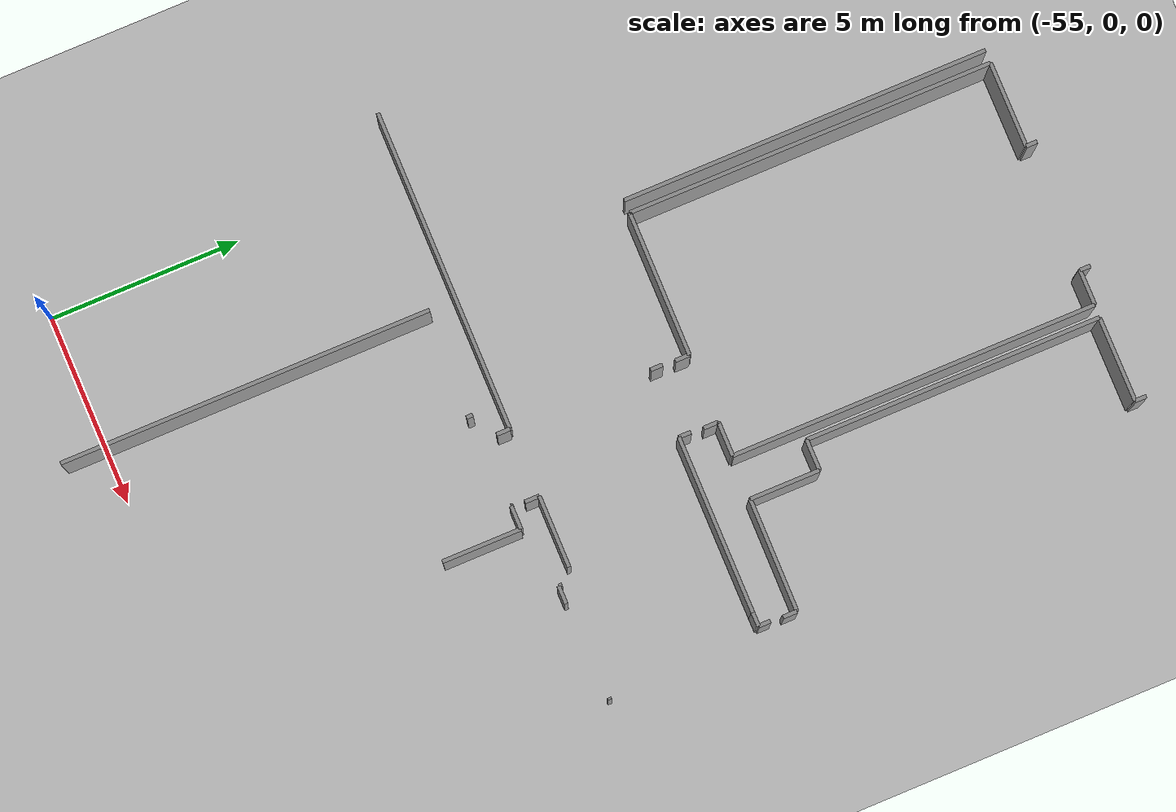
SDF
<sdf version="1.6">
 <world name="default">
  <model name="ground_plane">
   <static>1</static>
   <link name="link">
    <collision name="collision">
     <geometry><plane><normal>0 0 1</normal><size>100 100</size></plane></geometry>
     <surface><friction><ode><mu>100</mu><mu2>50</mu2></ode></friction></surface>
    </collision>
    <visual name="visual">
     <cast_shadows>0</cast_shadows>
     <geometry><plane><normal>0 0 1</normal><size>100 100</size></plane></geometry>
     <material>
      <script><uri>file://media/materials/scripts/gazebo.material</uri><name>Gazebo/Grey</name></script>
     </material>
    </visual>
   </link>
  </model>
  <model name="0510032197_A_40_1_105">
   <static>1</static>
   <link name="Wall_17">
    <collision name="Wall_17_Collision">
     <geometry><box><size>9.66255290484 0.1 2.5</size></box></geometry>
     <pose>4.83127645242 0 1.25 0 0 0</pose>
    </collision>
    <visual name="Wall_17_Visual">
     <pose>4.83127645242 0 1.25 0 0 0</pose>
     <geometry><box><size>9.66255290484 0.1 2.5</size></box></geometry>
     <material>
      <script><uri>file://media/materials/scripts/gazebo.material</uri><name>Gazebo/Grey</name></script>
      <ambient>1 1 1 1</ambient>
     </material>
    </visual>
    <pose>13.5438935421 -0.307705995247 0 0 0 -1.57079632679</pose>
   </link>
   <link name="Wall_22">
    <collision name="Wall_22_Collision">
     <geometry><box><size>9.64958883565 0.1 2.5</size></box></geometry>
     <pose>4.82479441782 0 1.25 0 0 0</pose>
    </collision>
    <visual name="Wall_22_Visual">
     <pose>4.82479441782 0 1.25 0 0 0</pose>
     <geometry><box><size>9.64958883565 0.1 2.5</size></box></geometry>
     <material>
      <script><uri>file://media/materials/scripts/gazebo.material</uri><name>Gazebo/Grey</name></script>
      <ambient>1 1 1 1</ambient>
     </material>
    </visual>
    <pose>13.8809593411 -9.96301427319 0 0 0 1.57079632679</pose>
   </link>
   <link name="Wall_23">
    <collision name="Wall_23_Collision">
     <geometry><box><size>2.2441820562 0.1 2.5</size></box></geometry>
     <pose>1.1220910281 0 1.25 0 0 0</pose>
    </collision>
    <visual name="Wall_23_Visual">
     <pose>1.1220910281 0 1.25 0 0 0</pose>
     <geometry><box><size>2.2441820562 0.1 2.5</size></box></geometry>
     <material>
      <script><uri>file://media/materials/scripts/gazebo.material</uri><name>Gazebo/Grey</name></script>
      <ambient>1 1 1 1</ambient>
     </material>
    </visual>
    <pose>13.8809593411 -0.313425437537 0 0 0 0.0</pose>
   </link>
   <link name="Wall_24">
    <collision name="Wall_24_Collision">
     <geometry><box><size>0.290674767092 0.1 2.5</size></box></geometry>
     <pose>0.145337383546 0 1.25 0 0 0</pose>
    </collision>
    <visual name="Wall_24_Visual">
     <pose>0.145337383546 0 1.25 0 0 0</pose>
     <geometry><box><size>0.290674767092 0.1 2.5</size></box></geometry>
     <material>
      <script><uri>file://media/materials/scripts/gazebo.material</uri><name>Gazebo/Grey</name></script>
      <ambient>1 1 1 1</ambient>
     </material>
    </visual>
    <pose>16.1251413973 -0.313425437537 0 0 0 1.57079632679</pose>
   </link>
   <link name="Wall_25">
    <collision name="Wall_25_Collision">
     <geometry><box><size>0.273262242784 0.1 2.5</size></box></geometry>
     <pose>0.136631121392 0 1.25 0 0 0</pose>
    </collision>
    <visual name="Wall_25_Visual">
     <pose>0.136631121392 0 1.25 0 0 0</pose>
     <geometry><box><size>0.273262242784 0.1 2.5</size></box></geometry>
     <material>
      <script><uri>file://media/materials/scripts/gazebo.material</uri><name>Gazebo/Grey</name></script>
      <ambient>1 1 1 1</ambient>
     </material>
    </visual>
    <pose>19.4655498926 -0.0227506704457 0 0 0 -1.57079632679</pose>
   </link>
   <link name="Wall_26">
    <collision name="Wall_26_Collision">
     <geometry><box><size>0.926549651114 0.1 2.5</size></box></geometry>
     <pose>0.463274825557 0 1.25 0 0 0</pose>
    </collision>
    <visual name="Wall_26_Visual">
     <pose>0.463274825557 0 1.25 0 0 0</pose>
     <geometry><box><size>0.926549651114 0.1 2.5</size></box></geometry>
     <material>
      <script><uri>file://media/materials/scripts/gazebo.material</uri><name>Gazebo/Grey</name></script>
      <ambient>1 1 1 1</ambient>
     </material>
    </visual>
    <pose>19.4655498926 -0.29601291323 0 0 0 0.0</pose>
   </link>
   <link name="Wall_27">
    <collision name="Wall_27_Collision">
     <geometry><box><size>9.65518117922 0.1 2.5</size></box></geometry>
     <pose>4.82759058961 0 1.25 0 0 0</pose>
    </collision>
    <visual name="Wall_27_Visual">
     <pose>4.82759058961 0 1.25 0 0 0</pose>
     <geometry><box><size>9.65518117922 0.1 2.5</size></box></geometry>
     <material>
      <script><uri>file://media/materials/scripts/gazebo.material</uri><name>Gazebo/Grey</name></script>
      <ambient>1 1 1 1</ambient>
     </material>
    </visual>
    <pose>20.3920995437 -0.29601291323 0 0 0 -1.57079632679</pose>
   </link>
   <link name="Wall_28">
    <collision name="Wall_28_Collision">
     <geometry><box><size>0.901892499905 0.1 2.5</size></box></geometry>
     <pose>0.450946249952 0 1.25 0 0 0</pose>
    </collision>
    <visual name="Wall_28_Visual">
     <pose>0.450946249952 0 1.25 0 0 0</pose>
     <geometry><box><size>0.901892499905 0.1 2.5</size></box></geometry>
     <material>
      <script><uri>file://media/materials/scripts/gazebo.material</uri><name>Gazebo/Grey</name></script>
      <ambient>1 1 1 1</ambient>
     </material>
    </visual>
    <pose>20.3920995437 -9.95119409245 0 0 0 3.14159265359</pose>
   </link>
   <link name="Wall_29">
    <collision name="Wall_29_Collision">
     <geometry><box><size>0.394768616785 0.1 2.5</size></box></geometry>
     <pose>0.197384308392 0 1.25 0 0 0</pose>
    </collision>
    <visual name="Wall_29_Visual">
     <pose>0.197384308392 0 1.25 0 0 0</pose>
     <geometry><box><size>0.394768616785 0.1 2.5</size></box></geometry>
     <material>
      <script><uri>file://media/materials/scripts/gazebo.material</uri><name>Gazebo/Grey</name></script>
      <ambient>1 1 1 1</ambient>
     </material>
    </visual>
    <pose>19.4902070438 -9.95119409245 0 0 0 -1.57079632679</pose>
   </link>
   <link name="Wall_30">
    <collision name="Wall_30_Collision">
     <geometry><box><size>0.377610289912 0.1 2.5</size></box></geometry>
     <pose>0.188805144956 0 1.25 0 0 0</pose>
    </collision>
    <visual name="Wall_30_Visual">
     <pose>0.188805144956 0 1.25 0 0 0</pose>
     <geometry><box><size>0.377610289912 0.1 2.5</size></box></geometry>
     <material>
      <script><uri>file://media/materials/scripts/gazebo.material</uri><name>Gazebo/Grey</name></script>
      <ambient>1 1 1 1</ambient>
     </material>
    </visual>
    <pose>17.6887098209 -10.3459627092 0 0 0 1.57079632679</pose>
   </link>
   <link name="Wall_31">
    <collision name="Wall_31_Collision">
     <geometry><box><size>3.80775422161 0.1 2.5</size></box></geometry>
     <pose>1.90387711081 0 1.25 0 0 0</pose>
    </collision>
    <visual name="Wall_31_Visual">
     <pose>1.90387711081 0 1.25 0 0 0</pose>
     <geometry><box><size>3.80775422161 0.1 2.5</size></box></geometry>
     <material>
      <script><uri>file://media/materials/scripts/gazebo.material</uri><name>Gazebo/Grey</name></script>
      <ambient>1 1 1 1</ambient>
     </material>
    </visual>
    <pose>17.6887098209 -9.96835241932 0 0 0 3.14019073856</pose>
   </link>
   <link name="Wall_32">
    <collision name="Wall_32_Collision">
     <geometry><box><size>1.84178751636 0.1 2.5</size></box></geometry>
     <pose>0.920893758182 0 1.25 0 0 0</pose>
    </collision>
    <visual name="Wall_32_Visual">
     <pose>0.920893758182 0 1.25 0 0 0</pose>
     <geometry><box><size>1.84178751636 0.1 2.5</size></box></geometry>
     <material>
      <script><uri>file://media/materials/scripts/gazebo.material</uri><name>Gazebo/Grey</name></script>
      <ambient>1 1 1 1</ambient>
     </material>
    </visual>
    <pose>21.5399280621 -9.96619174113 0 0 0 1.57079632679</pose>
   </link>
   <link name="Wall_33">
    <collision name="Wall_33_Collision">
     <geometry><box><size>0.813558891191 0.1 2.5</size></box></geometry>
     <pose>0.406779445595 0 1.25 0 0 0</pose>
    </collision>
    <visual name="Wall_33_Visual">
     <pose>0.406779445595 0 1.25 0 0 0</pose>
     <geometry><box><size>0.813558891191 0.1 2.5</size></box></geometry>
     <material>
      <script><uri>file://media/materials/scripts/gazebo.material</uri><name>Gazebo/Grey</name></script>
      <ambient>1 1 1 1</ambient>
     </material>
    </visual>
    <pose>21.5399280621 -8.12440422476 0 0 0 3.14159265359</pose>
   </link>
   <link name="Wall_34">
    <collision name="Wall_34_Collision">
     <geometry><box><size>7.81123298466 0.1 2.5</size></box></geometry>
     <pose>3.90561649233 0 1.25 0 0 0</pose>
    </collision>
    <visual name="Wall_34_Visual">
     <pose>3.90561649233 0 1.25 0 0 0</pose>
     <geometry><box><size>7.81123298466 0.1 2.5</size></box></geometry>
     <material>
      <script><uri>file://media/materials/scripts/gazebo.material</uri><name>Gazebo/Grey</name></script>
      <ambient>1 1 1 1</ambient>
     </material>
    </visual>
    <pose>20.7263691709 -8.12440422476 0 0 0 1.57079632679</pose>
   </link>
   <link name="Wall_35">
    <collision name="Wall_35_Collision">
     <geometry><box><size>2.23020119727 0.1 2.5</size></box></geometry>
     <pose>1.11510059863 0 1.25 0 0 0</pose>
    </collision>
    <visual name="Wall_35_Visual">
     <pose>1.11510059863 0 1.25 0 0 0</pose>
     <geometry><box><size>2.23020119727 0.1 2.5</size></box></geometry>
     <material>
      <script><uri>file://media/materials/scripts/gazebo.material</uri><name>Gazebo/Grey</name></script>
      <ambient>1 1 1 1</ambient>
     </material>
    </visual>
    <pose>20.7263691709 -0.313171240102 0 0 0 0.0</pose>
   </link>
   <link name="Wall_36">
    <collision name="Wall_36_Collision">
     <geometry><box><size>0.296648406818 0.1 2.5</size></box></geometry>
     <pose>0.148324203409 0 1.25 0 0 0</pose>
    </collision>
    <visual name="Wall_36_Visual">
     <pose>0.148324203409 0 1.25 0 0 0</pose>
     <geometry><box><size>0.296648406818 0.1 2.5</size></box></geometry>
     <material>
      <script><uri>file://media/materials/scripts/gazebo.material</uri><name>Gazebo/Grey</name></script>
      <ambient>1 1 1 1</ambient>
     </material>
    </visual>
    <pose>22.9565703682 -0.313171240102 0 0 0 1.57079632679</pose>
   </link>
   <link name="Wall_45">
    <collision name="Wall_45_Collision">
     <geometry><box><size>0.371890847621 0.1 2.5</size></box></geometry>
     <pose>0.185945423811 0 1.25 0 0 0</pose>
    </collision>
    <visual name="Wall_45_Visual">
     <pose>0.185945423811 0 1.25 0 0 0</pose>
     <geometry><box><size>0.371890847621 0.1 2.5</size></box></geometry>
     <material>
      <script><uri>file://media/materials/scripts/gazebo.material</uri><name>Gazebo/Grey</name></script>
      <ambient>1 1 1 1</ambient>
     </material>
    </visual>
    <pose>24.5177239162 -10.3521905464 0 0 0 1.57079632679</pose>
   </link>
   <link name="Wall_46">
    <collision name="Wall_46_Collision">
     <geometry><box><size>2.97782927362 0.1 2.5</size></box></geometry>
     <pose>1.48891463681 0 1.25 0 0 0</pose>
    </collision>
    <visual name="Wall_46_Visual">
     <pose>1.48891463681 0 1.25 0 0 0</pose>
     <geometry><box><size>2.97782927362 0.1 2.5</size></box></geometry>
     <material>
      <script><uri>file://media/materials/scripts/gazebo.material</uri><name>Gazebo/Grey</name></script>
      <ambient>1 1 1 1</ambient>
     </material>
    </visual>
    <pose>24.5177239162 -9.98029969878 0 0 0 3.13685497082</pose>
   </link>
   <link name="Wall_419">
    <collision name="Wall_419_Collision">
     <geometry><box><size>9.79829433521 0.1 2.5</size></box></geometry>
     <pose>4.89914716761 0 1.25 0 0 0</pose>
    </collision>
    <visual name="Wall_419_Visual">
     <pose>4.89914716761 0 1.25 0 0 0</pose>
     <geometry><box><size>9.79829433521 0.1 2.5</size></box></geometry>
     <material>
      <script><uri>file://media/materials/scripts/gazebo.material</uri><name>Gazebo/Grey</name></script>
      <ambient>1 1 1 1</ambient>
     </material>
    </visual>
    <pose>14.2058236632 -15.4332159789 0 0 0 -1.57079632679</pose>
   </link>
   <link name="Wall_423">
    <collision name="Wall_423_Collision">
     <geometry><box><size>0.167261912327 0.1 2.5</size></box></geometry>
     <pose>0.0836309561637 0 1.25 0 0 0</pose>
    </collision>
    <visual name="Wall_423_Visual">
     <pose>0.0836309561637 0 1.25 0 0 0</pose>
     <geometry><box><size>0.167261912327 0.1 2.5</size></box></geometry>
     <material>
      <script><uri>file://media/materials/scripts/gazebo.material</uri><name>Gazebo/Grey</name></script>
      <ambient>1 1 1 1</ambient>
     </material>
    </visual>
    <pose>17.0054271152 -15.4466884429 0 0 0 -1.57079632679</pose>
   </link>
   <link name="Wall_437">
    <collision name="Wall_437_Collision">
     <geometry><box><size>0.0550337447095 0.1 2.5</size></box></geometry>
     <pose>0.0275168723548 0 1.25 0 0 0</pose>
    </collision>
    <visual name="Wall_437_Visual">
     <pose>0.0275168723548 0 1.25 0 0 0</pose>
     <geometry><box><size>0.0550337447095 0.1 2.5</size></box></geometry>
     <material>
      <script><uri>file://media/materials/scripts/gazebo.material</uri><name>Gazebo/Grey</name></script>
      <ambient>1 1 1 1</ambient>
     </material>
    </visual>
    <pose>19.4344107068 -15.3799616162 0 0 0 -1.57079632679</pose>
   </link>
   <link name="Wall_438">
    <collision name="Wall_438_Collision">
     <geometry><box><size>0.615411990493 0.1 2.5</size></box></geometry>
     <pose>0.307705995247 0 1.25 0 0 0</pose>
    </collision>
    <visual name="Wall_438_Visual">
     <pose>0.307705995247 0 1.25 0 0 0</pose>
     <geometry><box><size>0.615411990493 0.1 2.5</size></box></geometry>
     <material>
      <script><uri>file://media/materials/scripts/gazebo.material</uri><name>Gazebo/Grey</name></script>
      <ambient>1 1 1 1</ambient>
     </material>
    </visual>
    <pose>19.4344107068 -15.4349953609 0 0 0 0.0</pose>
   </link>
   <link name="Wall_439">
    <collision name="Wall_439_Collision">
     <geometry><box><size>2.08556285667 0.1 2.5</size></box></geometry>
     <pose>1.04278142834 0 1.25 0 0 0</pose>
    </collision>
    <visual name="Wall_439_Visual">
     <pose>1.04278142834 0 1.25 0 0 0</pose>
     <geometry><box><size>2.08556285667 0.1 2.5</size></box></geometry>
     <material>
      <script><uri>file://media/materials/scripts/gazebo.material</uri><name>Gazebo/Grey</name></script>
      <ambient>1 1 1 1</ambient>
     </material>
    </visual>
    <pose>20.0498226973 -15.4349953609 0 0 0 -1.57079632679</pose>
   </link>
   <link name="Wall_451">
    <collision name="Wall_451_Collision">
     <geometry><box><size>0.467977478107 0.1 2.5</size></box></geometry>
     <pose>0.233988739054 0 1.25 0 0 0</pose>
    </collision>
    <visual name="Wall_451_Visual">
     <pose>0.233988739054 0 1.25 0 0 0</pose>
     <geometry><box><size>0.467977478107 0.1 2.5</size></box></geometry>
     <material>
      <script><uri>file://media/materials/scripts/gazebo.material</uri><name>Gazebo/Grey</name></script>
      <ambient>1 1 1 1</ambient>
     </material>
    </visual>
    <pose>22.1705918987 -15.1195363439 0 0 0 3.14159265359</pose>
   </link>
   <link name="Wall_452">
    <collision name="Wall_452_Collision">
     <geometry><box><size>0.0835038574461 0.1 2.5</size></box></geometry>
     <pose>0.041751928723 0 1.25 0 0 0</pose>
    </collision>
    <visual name="Wall_452_Visual">
     <pose>0.041751928723 0 1.25 0 0 0</pose>
     <geometry><box><size>0.0835038574461 0.1 2.5</size></box></geometry>
     <material>
      <script><uri>file://media/materials/scripts/gazebo.material</uri><name>Gazebo/Grey</name></script>
      <ambient>1 1 1 1</ambient>
     </material>
    </visual>
    <pose>21.7026144206 -15.1195363439 0 0 0 1.57079632679</pose>
   </link>
   <link name="Wall_453">
    <collision name="Wall_453_Collision">
     <geometry><box><size>0.0502039934417 0.1 2.5</size></box></geometry>
     <pose>0.0251019967208 0 1.25 0 0 0</pose>
    </collision>
    <visual name="Wall_453_Visual">
     <pose>0.0251019967208 0 1.25 0 0 0</pose>
     <geometry><box><size>0.0502039934417 0.1 2.5</size></box></geometry>
     <material>
      <script><uri>file://media/materials/scripts/gazebo.material</uri><name>Gazebo/Grey</name></script>
      <ambient>1 1 1 1</ambient>
     </material>
    </visual>
    <pose>24.6943911336 -15.0360324864 0 0 0 0.0</pose>
   </link>
   <link name="Wall_464">
    <collision name="Wall_464_Collision">
     <geometry><box><size>0.317111300347 0.1 2.5</size></box></geometry>
     <pose>0.158555650173 0 1.25 0 0 0</pose>
    </collision>
    <visual name="Wall_464_Visual">
     <pose>0.158555650173 0 1.25 0 0 0</pose>
     <geometry><box><size>0.317111300347 0.1 2.5</size></box></geometry>
     <material>
      <script><uri>file://media/materials/scripts/gazebo.material</uri><name>Gazebo/Grey</name></script>
      <ambient>1 1 1 1</ambient>
     </material>
    </visual>
    <pose>17.6621461889 -10.9912428984 0 0 0 1.57079632679</pose>
   </link>
   <link name="Wall_465">
    <collision name="Wall_465_Collision">
     <geometry><box><size>0.314569325995 0.1 2.5</size></box></geometry>
     <pose>0.157284662998 0 1.25 0 0 0</pose>
    </collision>
    <visual name="Wall_465_Visual">
     <pose>0.157284662998 0 1.25 0 0 0</pose>
     <geometry><box><size>0.314569325995 0.1 2.5</size></box></geometry>
     <material>
      <script><uri>file://media/materials/scripts/gazebo.material</uri><name>Gazebo/Grey</name></script>
      <ambient>1 1 1 1</ambient>
     </material>
    </visual>
    <pose>19.4613556349 -10.674131598 0 0 0 -1.57079632679</pose>
   </link>
   <link name="Wall_466">
    <collision name="Wall_466_Collision">
     <geometry><box><size>4.66998817982 0.1 2.5</size></box></geometry>
     <pose>2.33499408991 0 1.25 0 0 0</pose>
    </collision>
    <visual name="Wall_466_Visual">
     <pose>2.33499408991 0 1.25 0 0 0</pose>
     <geometry><box><size>4.66998817982 0.1 2.5</size></box></geometry>
     <material>
      <script><uri>file://media/materials/scripts/gazebo.material</uri><name>Gazebo/Grey</name></script>
      <ambient>1 1 1 1</ambient>
     </material>
    </visual>
    <pose>19.4613556349 -10.988700924 0 0 0 0.0</pose>
   </link>
   <link name="Wall_467">
    <collision name="Wall_467_Collision">
     <geometry><box><size>0.358291284841 0.1 2.5</size></box></geometry>
     <pose>0.17914564242 0 1.25 0 0 0</pose>
    </collision>
    <visual name="Wall_467_Visual">
     <pose>0.17914564242 0 1.25 0 0 0</pose>
     <geometry><box><size>0.358291284841 0.1 2.5</size></box></geometry>
     <material>
      <script><uri>file://media/materials/scripts/gazebo.material</uri><name>Gazebo/Grey</name></script>
      <ambient>1 1 1 1</ambient>
     </material>
    </visual>
    <pose>24.1313438147 -10.988700924 0 0 0 0.0</pose>
   </link>
   <link name="Wall_468">
    <collision name="Wall_468_Collision">
     <geometry><box><size>0.317746793935 0.1 2.5</size></box></geometry>
     <pose>0.158873396967 0 1.25 0 0 0</pose>
    </collision>
    <visual name="Wall_468_Visual">
     <pose>0.158873396967 0 1.25 0 0 0</pose>
     <geometry><box><size>0.317746793935 0.1 2.5</size></box></geometry>
     <material>
      <script><uri>file://media/materials/scripts/gazebo.material</uri><name>Gazebo/Grey</name></script>
      <ambient>1 1 1 1</ambient>
     </material>
    </visual>
    <pose>24.4896350996 -10.988700924 0 0 0 1.57079632679</pose>
   </link>
   <link name="Wall_542">
    <collision name="Wall_542_Collision">
     <geometry><box><size>1.88995793032 0.1 2.5</size></box></geometry>
     <pose>0.944978965162 0 1.25 0 0 0</pose>
    </collision>
    <visual name="Wall_542_Visual">
     <pose>0.944978965162 0 1.25 0 0 0</pose>
     <geometry><box><size>1.88995793032 0.1 2.5</size></box></geometry>
     <material>
      <script><uri>file://media/materials/scripts/gazebo.material</uri><name>Gazebo/Grey</name></script>
      <ambient>1 1 1 1</ambient>
     </material>
    </visual>
    <pose>21.3636421409 -14.7082448938 0 0 0 3.14159265359</pose>
   </link>
   <link name="Wall_543">
    <collision name="Wall_543_Collision">
     <geometry><box><size>0.384854916814 0.1 2.5</size></box></geometry>
     <pose>0.192427458407 0 1.25 0 0 0</pose>
    </collision>
    <visual name="Wall_543_Visual">
     <pose>0.192427458407 0 1.25 0 0 0</pose>
     <geometry><box><size>0.384854916814 0.1 2.5</size></box></geometry>
     <material>
      <script><uri>file://media/materials/scripts/gazebo.material</uri><name>Gazebo/Grey</name></script>
      <ambient>1 1 1 1</ambient>
     </material>
    </visual>
    <pose>19.4736842105 -14.7082448938 0 0 0 -1.57079632679</pose>
   </link>
   <link name="Wall_544">
    <collision name="Wall_544_Collision">
     <geometry><box><size>0.358418383559 0.1 2.5</size></box></geometry>
     <pose>0.179209191779 0 1.25 0 0 0</pose>
    </collision>
    <visual name="Wall_544_Visual">
     <pose>0.179209191779 0 1.25 0 0 0</pose>
     <geometry><box><size>0.358418383559 0.1 2.5</size></box></geometry>
     <material>
      <script><uri>file://media/materials/scripts/gazebo.material</uri><name>Gazebo/Grey</name></script>
      <ambient>1 1 1 1</ambient>
     </material>
    </visual>
    <pose>17.6743476658 -15.0930998106 0 0 0 1.57079632679</pose>
   </link>
   <link name="Wall_545">
    <collision name="Wall_545_Collision">
     <geometry><box><size>8.46579138016 0.1 2.5</size></box></geometry>
     <pose>4.23289569008 0 1.25 0 0 0</pose>
    </collision>
    <visual name="Wall_545_Visual">
     <pose>4.23289569008 0 1.25 0 0 0</pose>
     <geometry><box><size>8.46579138016 0.1 2.5</size></box></geometry>
     <material>
      <script><uri>file://media/materials/scripts/gazebo.material</uri><name>Gazebo/Grey</name></script>
      <ambient>1 1 1 1</ambient>
     </material>
    </visual>
    <pose>17.6743476658 -14.7346814271 0 0 0 3.14159265359</pose>
   </link>
   <pose>-65.5 24.1613162343 0 0 0 0</pose>
  </model>
 </world>
</sdf>
